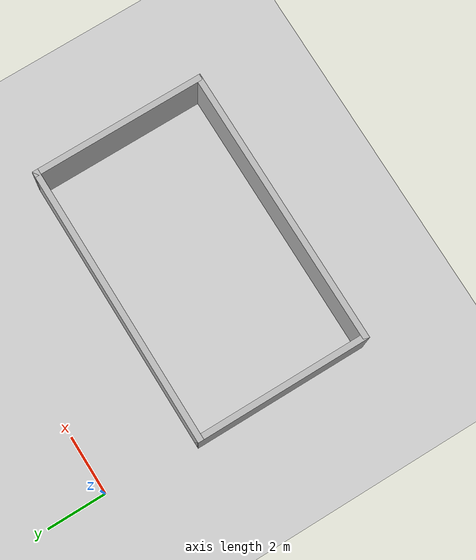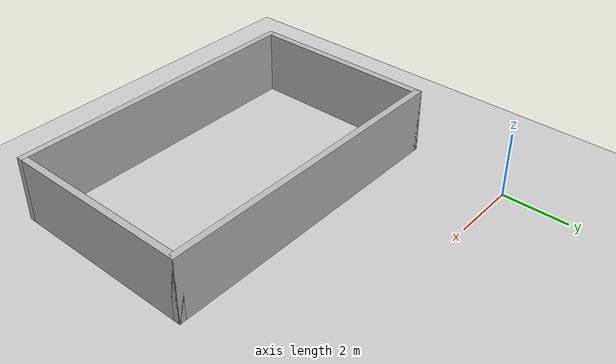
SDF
<?xml version="1.0" ?>
<sdf version='1.6'>
  <world name='gravel_featureless'>

    <plugin name="gazebo_ros_state" filename="libgazebo_ros_state.so">
      <ros>
        <namespace></namespace>
        <remapping>model_states:=gazebo/model_states</remapping>
        <remapping>link_states:=gazebo/link_states</remapping>
      </ros>
      <update_rate>50.0</update_rate>
    </plugin>

    <include>
      <uri>model://sun</uri>
    </include>

    <include>
      <uri>model://ground_plane</uri>
    </include>

    <spherical_coordinates>
      <surface_model>EARTH_WGS84</surface_model>
      <latitude_deg>37.4275</latitude_deg>
      <longitude_deg>-122.1697</longitude_deg>
      <elevation>0.0</elevation>
      <heading_deg>0.0</heading_deg>
    </spherical_coordinates>

    <!-- Field: x∈[1.45,7.45] y∈[-8.8,-3.3]. Reeds-Shepp turns at E/W ends only.          -->
    <!-- E/W walls: field_boundary ± 1.55m > obstacle_max_range=1.5m (turn clearance)       -->
    <!-- N/S walls: inner face = field boundary (robot never reaches N/S boundary, no turns) -->
    <!-- 8 E-W rows @ 0.47m spacing; swath x∈[2.3,6.6] y∈[-7.95,-4.15]                    -->

    <!-- North wall inner face at y=-3.3 = field_north boundary -->
    <model name="wall_north">
      <static>true</static>
      <pose>4.45 -3.2 1.0 0 0 0</pose>
      <link name="link">
        <collision name="collision">
          <geometry><box><size>9.5 0.2 2</size></box></geometry>
        </collision>
        <visual name="visual">
          <geometry><box><size>9.5 0.2 2</size></box></geometry>
        </visual>
      </link>
    </model>

    <!-- South wall inner face at y=-8.8 = field_south boundary -->
    <model name="wall_south">
      <static>true</static>
      <pose>4.45 -8.9 1.0 0 0 0</pose>
      <link name="link">
        <collision name="collision">
          <geometry><box><size>9.5 0.2 2</size></box></geometry>
        </collision>
        <visual name="visual">
          <geometry><box><size>9.5 0.2 2</size></box></geometry>
        </visual>
      </link>
    </model>

    <!-- East wall inner face at x=9.0: 1.55m east of field_east=7.45 (turn clearance) -->
    <model name="wall_east">
      <static>true</static>
      <pose>9.1 -6.05 1.0 0 0 0</pose>
      <link name="link">
        <collision name="collision">
          <geometry><box><size>0.2 5.9 2</size></box></geometry>
        </collision>
        <visual name="visual">
          <geometry><box><size>0.2 5.9 2</size></box></geometry>
        </visual>
      </link>
    </model>

    <!-- West wall inner face at x=-0.1: 1.55m west of field_west=1.45 (turn clearance) -->
    <model name="wall_west">
      <static>true</static>
      <pose>-0.2 -6.05 1.0 0 0 0</pose>
      <link name="link">
        <collision name="collision">
          <geometry><box><size>0.2 5.9 2</size></box></geometry>
        </collision>
        <visual name="visual">
          <geometry><box><size>0.2 5.9 2</size></box></geometry>
        </visual>
      </link>
    </model>

    <gui fullscreen='0'>
      <camera name='user_camera'>
        <pose frame=''>4.45 -17.0 14.0 0.0 0.8 1.57</pose>
        <view_controller>orbit</view_controller>
        <projection_type>perspective</projection_type>
      </camera>
    </gui>

  </world>
</sdf>
